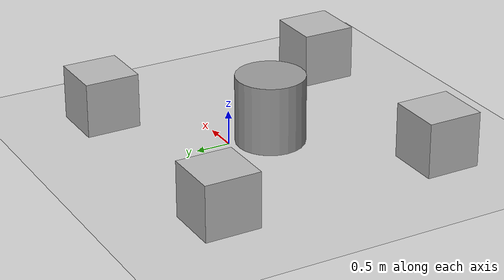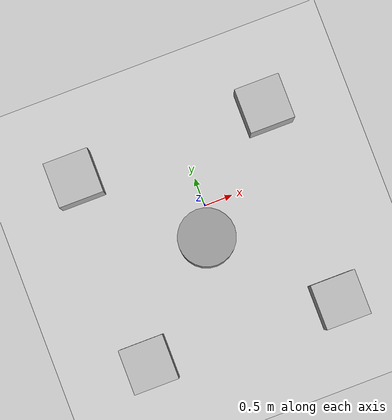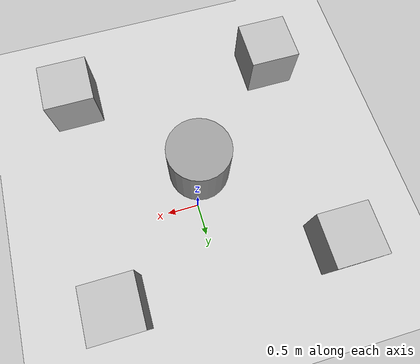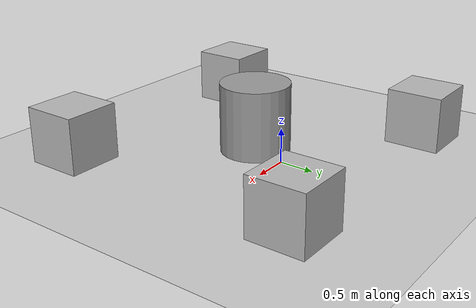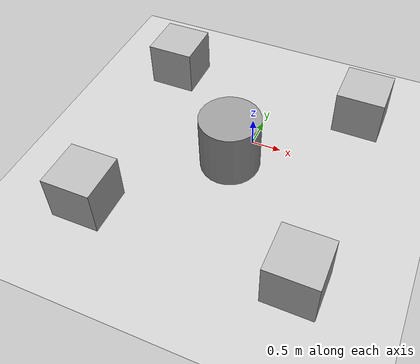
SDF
<sdf version="1.7">
 <world name="default">
  <light name="sun" type="directional">
   <pose>0 0 10 0 -0 0</pose>
   <diffuse>0.8 0.8 0.8 1</diffuse>
   <specular>0.2 0.2 0.2 1</specular>
   <attenuation>
    <range>1000</range>
    <constant>0.9</constant>
    <linear>0.01</linear>
    <quadratic>0.001</quadratic>
   </attenuation>
   <direction>-0.5 0.1 -0.9</direction>
   <spot><inner_angle>0</inner_angle><outer_angle>0</outer_angle><falloff>0</falloff></spot>
  </light>
  <model name="ground_plane">
   <static>1</static>
   <link name="link">
    <collision name="collision">
     <geometry><plane><normal>0 0 1</normal><size>100 100</size></plane></geometry>
     <surface><friction><ode><mu>100</mu><mu2>50</mu2></ode></friction></surface>
    </collision>
    <visual name="visual">
     <cast_shadows>0</cast_shadows>
     <geometry><plane><normal>0 0 1</normal><size>100 100</size></plane></geometry>
     <material>
      <script><uri>file://media/materials/scripts/gazebo.material</uri><name>Gazebo/Grey</name></script>
     </material>
    </visual>
   </link>
  </model>
  <gravity>0 0 -9.8</gravity>
  <magnetic_field>6e-06 2.3e-05 -4.2e-05</magnetic_field>
  <atmosphere type="adiabatic"/>
  <physics type="ode">
   <max_step_size>0.001</max_step_size>
   <real_time_factor>1</real_time_factor>
   <real_time_update_rate>1000</real_time_update_rate>
  </physics>
  <scene><ambient>0.4 0.4 0.4 1</ambient><background>0.7 0.7 0.7 1</background><shadows>1</shadows></scene>
  <audio><device>default</device></audio>
  <spherical_coordinates>
   <surface_model>EARTH_WGS84</surface_model>
   <latitude_deg>0</latitude_deg>
   <longitude_deg>0</longitude_deg>
   <elevation>0</elevation>
   <heading_deg>0</heading_deg>
  </spherical_coordinates>
  <model name="number1">
   <pose>-1.86073 -2.22283 0.4 0 -0 0</pose>
   <static>1</static>
   <link name="link">
    <visual name="visual">
     <geometry><mesh><uri>model://number1/meshes/number.dae</uri></mesh></geometry>
     <material>
      <script>
       <uri>model://number1/materials/scripts</uri>
       <uri>model://number1/materials/textures</uri>
       <name>Number/One</name>
      </script>
     </material>
    </visual>
   </link>
  </model>
  <model name="number2">
   <pose>-1.93989 1.19153 0.4 0 -0 0</pose>
   <static>1</static>
   <link name="link">
    <visual name="visual">
     <geometry><mesh><uri>model://number1/meshes/number.dae</uri></mesh></geometry>
     <material>
      <script>
       <uri>model://number2/materials/scripts</uri>
       <uri>model://number2/materials/textures</uri>
       <name>Number/Two</name>
      </script>
     </material>
    </visual>
   </link>
  </model>
  <model name="number3">
   <pose>1.54973 1.22641 0.4 0 -0 0</pose>
   <static>1</static>
   <link name="link">
    <visual name="visual">
     <geometry><mesh><uri>model://number1/meshes/number.dae</uri></mesh></geometry>
     <material>
      <script>
       <uri>model://number3/materials/scripts</uri>
       <uri>model://number3/materials/textures</uri>
       <name>Number/Three</name>
      </script>
     </material>
    </visual>
   </link>
  </model>
  <model name="number4">
   <pose>1.56947 -2.34832 0.4 0 -0 0</pose>
   <static>1</static>
   <link name="link">
    <visual name="visual">
     <geometry><mesh><uri>model://number1/meshes/number.dae</uri></mesh></geometry>
     <material>
      <script>
       <uri>model://number4/materials/scripts</uri>
       <uri>model://number4/materials/textures</uri>
       <name>Number/Four</name>
      </script>
     </material>
    </visual>
   </link>
  </model>
  <model name="unit_cylinder">
   <pose>-0.179032 -0.565589 0.499997 3e-06 4e-06 -0</pose>
   <link name="link">
    <inertial>
     <mass>1</mass>
     <inertia><ixx>0.145833</ixx><ixy>0</ixy><ixz>0</ixz><iyy>0.145833</iyy><iyz>0</iyz><izz>0.125</izz></inertia>
    </inertial>
    <collision name="collision">
     <geometry><cylinder><radius>0.5</radius><length>1</length></cylinder></geometry>
    </collision>
    <visual name="visual">
     <geometry><cylinder><radius>0.5</radius><length>1</length></cylinder></geometry>
     <material>
      <script><name>Gazebo/Grey</name><uri>file://media/materials/scripts/gazebo.material</uri></script>
     </material>
    </visual>
   </link>
  </model>
 </world>
</sdf>
